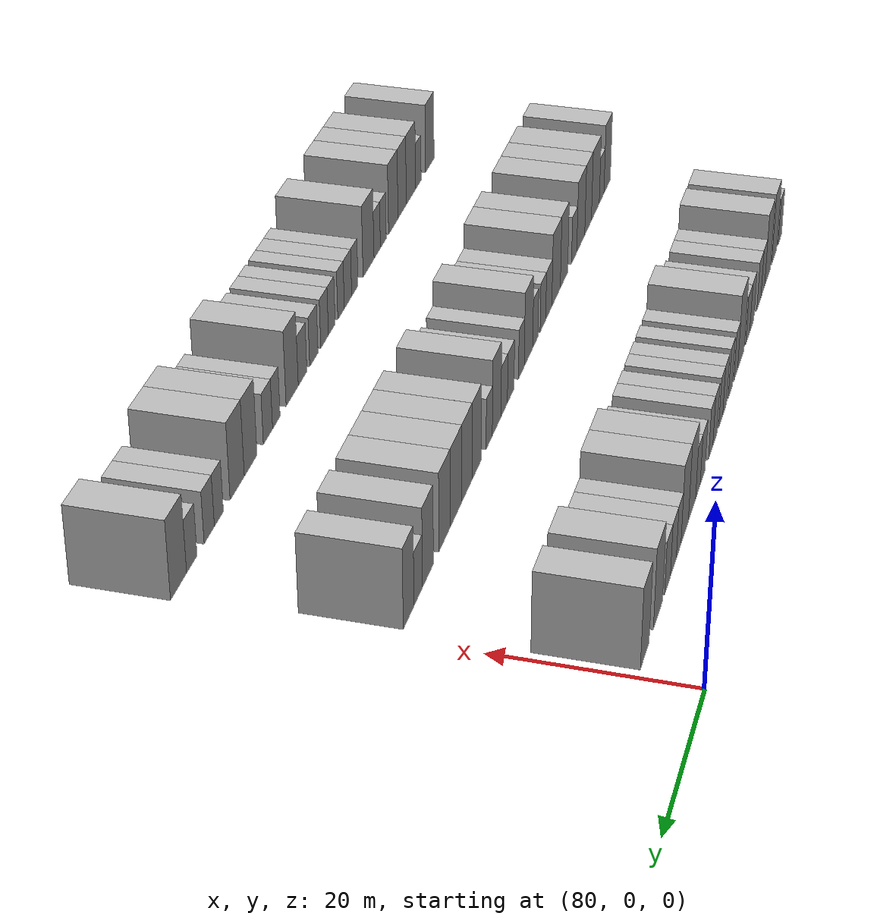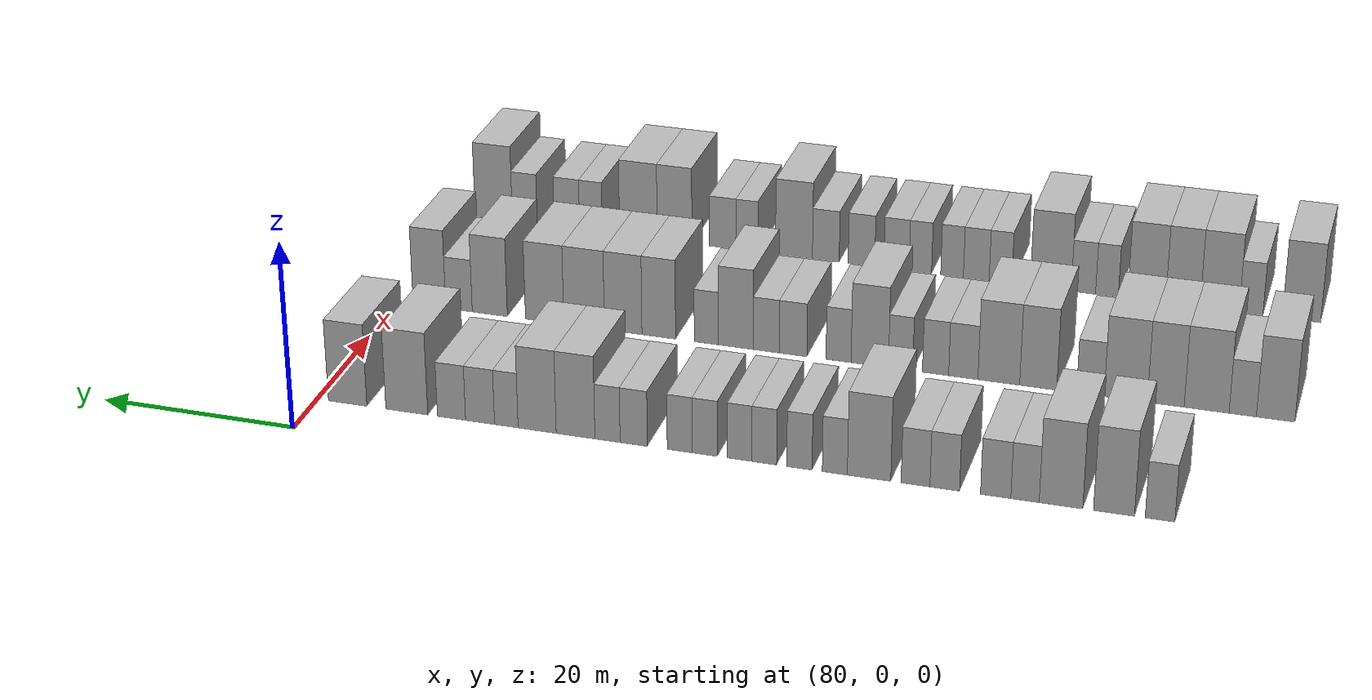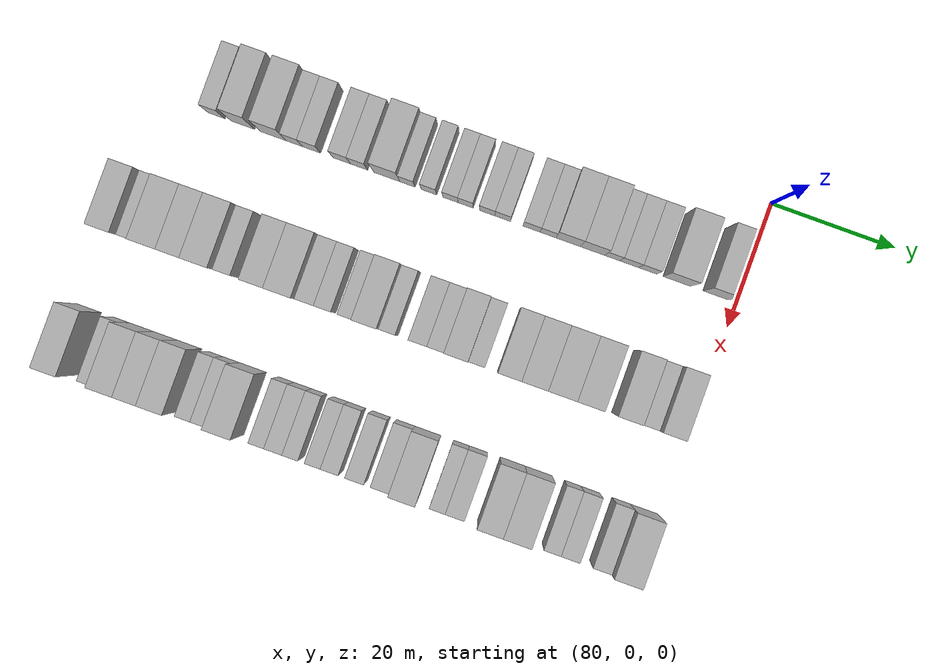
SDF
<sdf version="1.6">
 <world name="default">
  <model name="building_643">
   <static>1</static>
   <pose>91.0000 -83.6850 0 0.000000 0.000000 0.000000</pose>
   <link name="link">
    <pose>0 0 3.00 0 0 0</pose>
    <collision name="collision"><geometry><box><size>10.0000 2.7421 6.0000</size></box></geometry></collision>
    <visual name="visual">
     <cast_shadows>0</cast_shadows>
     <geometry><box><size>10.0000 2.7421 6.0000</size></box></geometry>
     <material>
      <script>
       <uri>model://HANNAS_wall/materials/scripts</uri>
       <uri>model://HANNAS_wall/materials/textures</uri>
       <name>vrc/HANNAS_wall</name>
      </script>
     </material>
    </visual>
   </link>
  </model>
  <model name="building_644">
   <static>1</static>
   <pose>91.0000 -79.4085 0 0.000000 0.000000 0.000000</pose>
   <link name="link">
    <pose>0 0 4.50 0 0 0</pose>
    <collision name="collision"><geometry><box><size>10.0000 3.8108 9.0000</size></box></geometry></collision>
    <visual name="visual">
     <cast_shadows>0</cast_shadows>
     <geometry><box><size>10.0000 3.8108 9.0000</size></box></geometry>
     <material>
      <script>
       <uri>model://HANNAS_wall/materials/scripts</uri>
       <uri>model://HANNAS_wall/materials/textures</uri>
       <name>vrc/HANNAS_wall</name>
      </script>
     </material>
    </visual>
   </link>
  </model>
  <model name="building_645">
   <static>1</static>
   <pose>91.0000 -74.4525 0 0.000000 0.000000 0.000000</pose>
   <link name="link">
    <pose>0 0 4.50 0 0 0</pose>
    <collision name="collision"><geometry><box><size>10.0000 4.1012 9.0000</size></box></geometry></collision>
    <visual name="visual">
     <cast_shadows>0</cast_shadows>
     <geometry><box><size>10.0000 4.1012 9.0000</size></box></geometry>
     <material>
      <script>
       <uri>model://HANNAS_wall/materials/scripts</uri>
       <uri>model://HANNAS_wall/materials/textures</uri>
       <name>vrc/HANNAS_wall</name>
      </script>
     </material>
    </visual>
   </link>
  </model>
  <model name="building_646">
   <static>1</static>
   <pose>91.0000 -71.0633 0 0.000000 0.000000 0.000000</pose>
   <link name="link">
    <pose>0 0 3.00 0 0 0</pose>
    <collision name="collision"><geometry><box><size>10.0000 2.6772 6.0000</size></box></geometry></collision>
    <visual name="visual">
     <cast_shadows>0</cast_shadows>
     <geometry><box><size>10.0000 2.6772 6.0000</size></box></geometry>
     <material>
      <script>
       <uri>model://HANNAS_wall/materials/scripts</uri>
       <uri>model://HANNAS_wall/materials/textures</uri>
       <name>vrc/HANNAS_wall</name>
      </script>
     </material>
    </visual>
   </link>
  </model>
  <model name="building_647">
   <static>1</static>
   <pose>91.0000 -68.2858 0 0.000000 0.000000 0.000000</pose>
   <link name="link">
    <pose>0 0 3.00 0 0 0</pose>
    <collision name="collision"><geometry><box><size>10.0000 2.8777 6.0000</size></box></geometry></collision>
    <visual name="visual">
     <cast_shadows>0</cast_shadows>
     <geometry><box><size>10.0000 2.8777 6.0000</size></box></geometry>
     <material>
      <script>
       <uri>model://HANNAS_wall/materials/scripts</uri>
       <uri>model://HANNAS_wall/materials/textures</uri>
       <name>vrc/HANNAS_wall</name>
      </script>
     </material>
    </visual>
   </link>
  </model>
  <model name="building_648">
   <static>1</static>
   <pose>91.0000 -63.4286 0 0.000000 0.000000 0.000000</pose>
   <link name="link">
    <pose>0 0 3.00 0 0 0</pose>
    <collision name="collision"><geometry><box><size>10.0000 2.8369 6.0000</size></box></geometry></collision>
    <visual name="visual">
     <cast_shadows>0</cast_shadows>
     <geometry><box><size>10.0000 2.8369 6.0000</size></box></geometry>
     <material>
      <script>
       <uri>model://HANNAS_wall/materials/scripts</uri>
       <uri>model://HANNAS_wall/materials/textures</uri>
       <name>vrc/HANNAS_wall</name>
      </script>
     </material>
    </visual>
   </link>
  </model>
  <model name="building_649">
   <static>1</static>
   <pose>91.0000 -60.6239 0 0.000000 0.000000 0.000000</pose>
   <link name="link">
    <pose>0 0 3.00 0 0 0</pose>
    <collision name="collision"><geometry><box><size>10.0000 2.7725 6.0000</size></box></geometry></collision>
    <visual name="visual">
     <cast_shadows>0</cast_shadows>
     <geometry><box><size>10.0000 2.7725 6.0000</size></box></geometry>
     <material>
      <script>
       <uri>model://HANNAS_wall/materials/scripts</uri>
       <uri>model://HANNAS_wall/materials/textures</uri>
       <name>vrc/HANNAS_wall</name>
      </script>
     </material>
    </visual>
   </link>
  </model>
  <model name="building_650">
   <static>1</static>
   <pose>91.0000 -56.1336 0 0.000000 0.000000 0.000000</pose>
   <link name="link">
    <pose>0 0 4.50 0 0 0</pose>
    <collision name="collision"><geometry><box><size>10.0000 4.2081 9.0000</size></box></geometry></collision>
    <visual name="visual">
     <cast_shadows>0</cast_shadows>
     <geometry><box><size>10.0000 4.2081 9.0000</size></box></geometry>
     <material>
      <script>
       <uri>model://HANNAS_wall/materials/scripts</uri>
       <uri>model://HANNAS_wall/materials/textures</uri>
       <name>vrc/HANNAS_wall</name>
      </script>
     </material>
    </visual>
   </link>
  </model>
  <model name="building_651">
   <static>1</static>
   <pose>91.0000 -52.8080 0 0.000000 0.000000 0.000000</pose>
   <link name="link">
    <pose>0 0 3.00 0 0 0</pose>
    <collision name="collision"><geometry><box><size>10.0000 2.4431 6.0000</size></box></geometry></collision>
    <visual name="visual">
     <cast_shadows>0</cast_shadows>
     <geometry><box><size>10.0000 2.4431 6.0000</size></box></geometry>
     <material>
      <script>
       <uri>model://HANNAS_wall/materials/scripts</uri>
       <uri>model://HANNAS_wall/materials/textures</uri>
       <name>vrc/HANNAS_wall</name>
      </script>
     </material>
    </visual>
   </link>
  </model>
  <model name="building_652">
   <static>1</static>
   <pose>91.0000 -49.3465 0 0.000000 0.000000 0.000000</pose>
   <link name="link">
    <pose>0 0 3.00 0 0 0</pose>
    <collision name="collision"><geometry><box><size>10.0000 2.4798 6.0000</size></box></geometry></collision>
    <visual name="visual">
     <cast_shadows>0</cast_shadows>
     <geometry><box><size>10.0000 2.4798 6.0000</size></box></geometry>
     <material>
      <script>
       <uri>model://HANNAS_wall/materials/scripts</uri>
       <uri>model://HANNAS_wall/materials/textures</uri>
       <name>vrc/HANNAS_wall</name>
      </script>
     </material>
    </visual>
   </link>
  </model>
  <model name="building_653">
   <static>1</static>
   <pose>91.0000 -45.8767 0 0.000000 0.000000 0.000000</pose>
   <link name="link">
    <pose>0 0 3.00 0 0 0</pose>
    <collision name="collision"><geometry><box><size>10.0000 2.4599 6.0000</size></box></geometry></collision>
    <visual name="visual">
     <cast_shadows>0</cast_shadows>
     <geometry><box><size>10.0000 2.4599 6.0000</size></box></geometry>
     <material>
      <script>
       <uri>model://HANNAS_wall/materials/scripts</uri>
       <uri>model://HANNAS_wall/materials/textures</uri>
       <name>vrc/HANNAS_wall</name>
      </script>
     </material>
    </visual>
   </link>
  </model>
  <model name="building_654">
   <static>1</static>
   <pose>91.0000 -43.4436 0 0.000000 0.000000 0.000000</pose>
   <link name="link">
    <pose>0 0 3.00 0 0 0</pose>
    <collision name="collision"><geometry><box><size>10.0000 2.4063 6.0000</size></box></geometry></collision>
    <visual name="visual">
     <cast_shadows>0</cast_shadows>
     <geometry><box><size>10.0000 2.4063 6.0000</size></box></geometry>
     <material>
      <script>
       <uri>model://HANNAS_wall/materials/scripts</uri>
       <uri>model://HANNAS_wall/materials/textures</uri>
       <name>vrc/HANNAS_wall</name>
      </script>
     </material>
    </visual>
   </link>
  </model>
  <model name="building_655">
   <static>1</static>
   <pose>91.0000 -39.9858 0 0.000000 0.000000 0.000000</pose>
   <link name="link">
    <pose>0 0 3.00 0 0 0</pose>
    <collision name="collision"><geometry><box><size>10.0000 2.5092 6.0000</size></box></geometry></collision>
    <visual name="visual">
     <cast_shadows>0</cast_shadows>
     <geometry><box><size>10.0000 2.5092 6.0000</size></box></geometry>
     <material>
      <script>
       <uri>model://HANNAS_wall/materials/scripts</uri>
       <uri>model://HANNAS_wall/materials/textures</uri>
       <name>vrc/HANNAS_wall</name>
      </script>
     </material>
    </visual>
   </link>
  </model>
  <model name="building_656">
   <static>1</static>
   <pose>91.0000 -37.4849 0 0.000000 0.000000 0.000000</pose>
   <link name="link">
    <pose>0 0 3.00 0 0 0</pose>
    <collision name="collision"><geometry><box><size>10.0000 2.4926 6.0000</size></box></geometry></collision>
    <visual name="visual">
     <cast_shadows>0</cast_shadows>
     <geometry><box><size>10.0000 2.4926 6.0000</size></box></geometry>
     <material>
      <script>
       <uri>model://HANNAS_wall/materials/scripts</uri>
       <uri>model://HANNAS_wall/materials/textures</uri>
       <name>vrc/HANNAS_wall</name>
      </script>
     </material>
    </visual>
   </link>
  </model>
  <model name="building_657">
   <static>1</static>
   <pose>91.0000 -32.8639 0 0.000000 0.000000 0.000000</pose>
   <link name="link">
    <pose>0 0 3.00 0 0 0</pose>
    <collision name="collision"><geometry><box><size>10.0000 2.7495 6.0000</size></box></geometry></collision>
    <visual name="visual">
     <cast_shadows>0</cast_shadows>
     <geometry><box><size>10.0000 2.7495 6.0000</size></box></geometry>
     <material>
      <script>
       <uri>model://HANNAS_wall/materials/scripts</uri>
       <uri>model://HANNAS_wall/materials/textures</uri>
       <name>vrc/HANNAS_wall</name>
      </script>
     </material>
    </visual>
   </link>
  </model>
  <model name="building_658">
   <static>1</static>
   <pose>91.0000 -30.2116 0 0.000000 0.000000 0.000000</pose>
   <link name="link">
    <pose>0 0 3.00 0 0 0</pose>
    <collision name="collision"><geometry><box><size>10.0000 2.5549 6.0000</size></box></geometry></collision>
    <visual name="visual">
     <cast_shadows>0</cast_shadows>
     <geometry><box><size>10.0000 2.5549 6.0000</size></box></geometry>
     <material>
      <script>
       <uri>model://HANNAS_wall/materials/scripts</uri>
       <uri>model://HANNAS_wall/materials/textures</uri>
       <name>vrc/HANNAS_wall</name>
      </script>
     </material>
    </visual>
   </link>
  </model>
  <model name="building_659">
   <static>1</static>
   <pose>91.0000 -26.9618 0 0.000000 0.000000 0.000000</pose>
   <link name="link">
    <pose>0 0 4.50 0 0 0</pose>
    <collision name="collision"><geometry><box><size>10.0000 3.9448 9.0000</size></box></geometry></collision>
    <visual name="visual">
     <cast_shadows>0</cast_shadows>
     <geometry><box><size>10.0000 3.9448 9.0000</size></box></geometry>
     <material>
      <script>
       <uri>model://HANNAS_wall/materials/scripts</uri>
       <uri>model://HANNAS_wall/materials/textures</uri>
       <name>vrc/HANNAS_wall</name>
      </script>
     </material>
    </visual>
   </link>
  </model>
  <model name="building_660">
   <static>1</static>
   <pose>91.0000 -23.0327 0 0.000000 0.000000 0.000000</pose>
   <link name="link">
    <pose>0 0 4.50 0 0 0</pose>
    <collision name="collision"><geometry><box><size>10.0000 3.9133 9.0000</size></box></geometry></collision>
    <visual name="visual">
     <cast_shadows>0</cast_shadows>
     <geometry><box><size>10.0000 3.9133 9.0000</size></box></geometry>
     <material>
      <script>
       <uri>model://HANNAS_wall/materials/scripts</uri>
       <uri>model://HANNAS_wall/materials/textures</uri>
       <name>vrc/HANNAS_wall</name>
      </script>
     </material>
    </visual>
   </link>
  </model>
  <model name="building_661">
   <static>1</static>
   <pose>91.0000 -19.8635 0 0.000000 0.000000 0.000000</pose>
   <link name="link">
    <pose>0 0 3.00 0 0 0</pose>
    <collision name="collision"><geometry><box><size>10.0000 2.4252 6.0000</size></box></geometry></collision>
    <visual name="visual">
     <cast_shadows>0</cast_shadows>
     <geometry><box><size>10.0000 2.4252 6.0000</size></box></geometry>
     <material>
      <script>
       <uri>model://HANNAS_wall/materials/scripts</uri>
       <uri>model://HANNAS_wall/materials/textures</uri>
       <name>vrc/HANNAS_wall</name>
      </script>
     </material>
    </visual>
   </link>
  </model>
  <model name="building_662">
   <static>1</static>
   <pose>91.0000 -17.1523 0 0.000000 0.000000 0.000000</pose>
   <link name="link">
    <pose>0 0 3.00 0 0 0</pose>
    <collision name="collision"><geometry><box><size>10.0000 2.9972 6.0000</size></box></geometry></collision>
    <visual name="visual">
     <cast_shadows>0</cast_shadows>
     <geometry><box><size>10.0000 2.9972 6.0000</size></box></geometry>
     <material>
      <script>
       <uri>model://HANNAS_wall/materials/scripts</uri>
       <uri>model://HANNAS_wall/materials/textures</uri>
       <name>vrc/HANNAS_wall</name>
      </script>
     </material>
    </visual>
   </link>
  </model>
  <model name="building_663">
   <static>1</static>
   <pose>91.0000 -14.1858 0 0.000000 0.000000 0.000000</pose>
   <link name="link">
    <pose>0 0 3.00 0 0 0</pose>
    <collision name="collision"><geometry><box><size>10.0000 2.9357 6.0000</size></box></geometry></collision>
    <visual name="visual">
     <cast_shadows>0</cast_shadows>
     <geometry><box><size>10.0000 2.9357 6.0000</size></box></geometry>
     <material>
      <script>
       <uri>model://HANNAS_wall/materials/scripts</uri>
       <uri>model://HANNAS_wall/materials/textures</uri>
       <name>vrc/HANNAS_wall</name>
      </script>
     </material>
    </visual>
   </link>
  </model>
  <model name="building_664">
   <static>1</static>
   <pose>91.0000 -9.5169 0 0.000000 0.000000 0.000000</pose>
   <link name="link">
    <pose>0 0 4.50 0 0 0</pose>
    <collision name="collision"><geometry><box><size>10.0000 4.4023 9.0000</size></box></geometry></collision>
    <visual name="visual">
     <cast_shadows>0</cast_shadows>
     <geometry><box><size>10.0000 4.4023 9.0000</size></box></geometry>
     <material>
      <script>
       <uri>model://HANNAS_wall/materials/scripts</uri>
       <uri>model://HANNAS_wall/materials/textures</uri>
       <name>vrc/HANNAS_wall</name>
      </script>
     </material>
    </visual>
   </link>
  </model>
  <model name="building_665">
   <static>1</static>
   <pose>91.0000 -3.2772 0 0.000000 0.000000 0.000000</pose>
   <link name="link">
    <pose>0 0 4.50 0 0 0</pose>
    <collision name="collision"><geometry><box><size>10.0000 4.0771 9.0000</size></box></geometry></collision>
    <visual name="visual">
     <cast_shadows>0</cast_shadows>
     <geometry><box><size>10.0000 4.0771 9.0000</size></box></geometry>
     <material>
      <script>
       <uri>model://HANNAS_wall/materials/scripts</uri>
       <uri>model://HANNAS_wall/materials/textures</uri>
       <name>vrc/HANNAS_wall</name>
      </script>
     </material>
    </visual>
   </link>
  </model>
  <model name="building_837">
   <static>1</static>
   <pose>113.0000 -91.6653 0 0.000000 0.000000 0.000000</pose>
   <link name="link">
    <pose>0 0 4.50 0 0 0</pose>
    <collision name="collision"><geometry><box><size>10.0000 3.7498 9.0000</size></box></geometry></collision>
    <visual name="visual">
     <cast_shadows>0</cast_shadows>
     <geometry><box><size>10.0000 3.7498 9.0000</size></box></geometry>
     <material>
      <script>
       <uri>model://HANNAS_wall/materials/scripts</uri>
       <uri>model://HANNAS_wall/materials/textures</uri>
       <name>vrc/HANNAS_wall</name>
      </script>
     </material>
    </visual>
   </link>
  </model>
  <model name="building_838">
   <static>1</static>
   <pose>113.0000 -88.4600 0 0.000000 0.000000 0.000000</pose>
   <link name="link">
    <pose>0 0 3.00 0 0 0</pose>
    <collision name="collision"><geometry><box><size>10.0000 2.6609 6.0000</size></box></geometry></collision>
    <visual name="visual">
     <cast_shadows>0</cast_shadows>
     <geometry><box><size>10.0000 2.6609 6.0000</size></box></geometry>
     <material>
      <script>
       <uri>model://HANNAS_wall/materials/scripts</uri>
       <uri>model://HANNAS_wall/materials/textures</uri>
       <name>vrc/HANNAS_wall</name>
      </script>
     </material>
    </visual>
   </link>
  </model>
  <model name="building_839">
   <static>1</static>
   <pose>113.0000 -84.9216 0 0.000000 0.000000 0.000000</pose>
   <link name="link">
    <pose>0 0 4.50 0 0 0</pose>
    <collision name="collision"><geometry><box><size>10.0000 4.4158 9.0000</size></box></geometry></collision>
    <visual name="visual">
     <cast_shadows>0</cast_shadows>
     <geometry><box><size>10.0000 4.4158 9.0000</size></box></geometry>
     <material>
      <script>
       <uri>model://HANNAS_wall/materials/scripts</uri>
       <uri>model://HANNAS_wall/materials/textures</uri>
       <name>vrc/HANNAS_wall</name>
      </script>
     </material>
    </visual>
   </link>
  </model>
  <model name="building_840">
   <static>1</static>
   <pose>113.0000 -80.8931 0 0.000000 0.000000 0.000000</pose>
   <link name="link">
    <pose>0 0 4.50 0 0 0</pose>
    <collision name="collision"><geometry><box><size>10.0000 3.6413 9.0000</size></box></geometry></collision>
    <visual name="visual">
     <cast_shadows>0</cast_shadows>
     <geometry><box><size>10.0000 3.6413 9.0000</size></box></geometry>
     <material>
      <script>
       <uri>model://HANNAS_wall/materials/scripts</uri>
       <uri>model://HANNAS_wall/materials/textures</uri>
       <name>vrc/HANNAS_wall</name>
      </script>
     </material>
    </visual>
   </link>
  </model>
  <model name="building_841">
   <static>1</static>
   <pose>113.0000 -76.9253 0 0.000000 0.000000 0.000000</pose>
   <link name="link">
    <pose>0 0 4.50 0 0 0</pose>
    <collision name="collision"><geometry><box><size>10.0000 4.2943 9.0000</size></box></geometry></collision>
    <visual name="visual">
     <cast_shadows>0</cast_shadows>
     <geometry><box><size>10.0000 4.2943 9.0000</size></box></geometry>
     <material>
      <script>
       <uri>model://HANNAS_wall/materials/scripts</uri>
       <uri>model://HANNAS_wall/materials/textures</uri>
       <name>vrc/HANNAS_wall</name>
      </script>
     </material>
    </visual>
   </link>
  </model>
  <model name="building_842">
   <static>1</static>
   <pose>113.0000 -73.4005 0 0.000000 0.000000 0.000000</pose>
   <link name="link">
    <pose>0 0 3.00 0 0 0</pose>
    <collision name="collision"><geometry><box><size>10.0000 2.7552 6.0000</size></box></geometry></collision>
    <visual name="visual">
     <cast_shadows>0</cast_shadows>
     <geometry><box><size>10.0000 2.7552 6.0000</size></box></geometry>
     <material>
      <script>
       <uri>model://HANNAS_wall/materials/scripts</uri>
       <uri>model://HANNAS_wall/materials/textures</uri>
       <name>vrc/HANNAS_wall</name>
      </script>
     </material>
    </visual>
   </link>
  </model>
  <model name="building_843">
   <static>1</static>
   <pose>113.0000 -68.1539 0 0.000000 0.000000 0.000000</pose>
   <link name="link">
    <pose>0 0 4.50 0 0 0</pose>
    <collision name="collision"><geometry><box><size>10.0000 3.7379 9.0000</size></box></geometry></collision>
    <visual name="visual">
     <cast_shadows>0</cast_shadows>
     <geometry><box><size>10.0000 3.7379 9.0000</size></box></geometry>
     <material>
      <script>
       <uri>model://HANNAS_wall/materials/scripts</uri>
       <uri>model://HANNAS_wall/materials/textures</uri>
       <name>vrc/HANNAS_wall</name>
      </script>
     </material>
    </visual>
   </link>
  </model>
  <model name="building_844">
   <static>1</static>
   <pose>113.0000 -64.1636 0 0.000000 0.000000 0.000000</pose>
   <link name="link">
    <pose>0 0 4.50 0 0 0</pose>
    <collision name="collision"><geometry><box><size>10.0000 4.2427 9.0000</size></box></geometry></collision>
    <visual name="visual">
     <cast_shadows>0</cast_shadows>
     <geometry><box><size>10.0000 4.2427 9.0000</size></box></geometry>
     <material>
      <script>
       <uri>model://HANNAS_wall/materials/scripts</uri>
       <uri>model://HANNAS_wall/materials/textures</uri>
       <name>vrc/HANNAS_wall</name>
      </script>
     </material>
    </visual>
   </link>
  </model>
  <model name="building_845">
   <static>1</static>
   <pose>113.0000 -60.5468 0 0.000000 0.000000 0.000000</pose>
   <link name="link">
    <pose>0 0 3.00 0 0 0</pose>
    <collision name="collision"><geometry><box><size>10.0000 2.9909 6.0000</size></box></geometry></collision>
    <visual name="visual">
     <cast_shadows>0</cast_shadows>
     <geometry><box><size>10.0000 2.9909 6.0000</size></box></geometry>
     <material>
      <script>
       <uri>model://HANNAS_wall/materials/scripts</uri>
       <uri>model://HANNAS_wall/materials/textures</uri>
       <name>vrc/HANNAS_wall</name>
      </script>
     </material>
    </visual>
   </link>
  </model>
  <model name="building_846">
   <static>1</static>
   <pose>113.0000 -57.7048 0 0.000000 0.000000 0.000000</pose>
   <link name="link">
    <pose>0 0 3.00 0 0 0</pose>
    <collision name="collision"><geometry><box><size>10.0000 2.6932 6.0000</size></box></geometry></collision>
    <visual name="visual">
     <cast_shadows>0</cast_shadows>
     <geometry><box><size>10.0000 2.6932 6.0000</size></box></geometry>
     <material>
      <script>
       <uri>model://HANNAS_wall/materials/scripts</uri>
       <uri>model://HANNAS_wall/materials/textures</uri>
       <name>vrc/HANNAS_wall</name>
      </script>
     </material>
    </visual>
   </link>
  </model>
  <model name="building_847">
   <static>1</static>
   <pose>113.0000 -54.1045 0 0.000000 0.000000 0.000000</pose>
   <link name="link">
    <pose>0 0 3.00 0 0 0</pose>
    <collision name="collision"><geometry><box><size>10.0000 2.5075 6.0000</size></box></geometry></collision>
    <visual name="visual">
     <cast_shadows>0</cast_shadows>
     <geometry><box><size>10.0000 2.5075 6.0000</size></box></geometry>
     <material>
      <script>
       <uri>model://HANNAS_wall/materials/scripts</uri>
       <uri>model://HANNAS_wall/materials/textures</uri>
       <name>vrc/HANNAS_wall</name>
      </script>
     </material>
    </visual>
   </link>
  </model>
  <model name="building_848">
   <static>1</static>
   <pose>113.0000 -50.9097 0 0.000000 0.000000 0.000000</pose>
   <link name="link">
    <pose>0 0 4.50 0 0 0</pose>
    <collision name="collision"><geometry><box><size>10.0000 3.8820 9.0000</size></box></geometry></collision>
    <visual name="visual">
     <cast_shadows>0</cast_shadows>
     <geometry><box><size>10.0000 3.8820 9.0000</size></box></geometry>
     <material>
      <script>
       <uri>model://HANNAS_wall/materials/scripts</uri>
       <uri>model://HANNAS_wall/materials/textures</uri>
       <name>vrc/HANNAS_wall</name>
      </script>
     </material>
    </visual>
   </link>
  </model>
  <model name="building_849">
   <static>1</static>
   <pose>113.0000 -47.6640 0 0.000000 0.000000 0.000000</pose>
   <link name="link">
    <pose>0 0 3.00 0 0 0</pose>
    <collision name="collision"><geometry><box><size>10.0000 2.6095 6.0000</size></box></geometry></collision>
    <visual name="visual">
     <cast_shadows>0</cast_shadows>
     <geometry><box><size>10.0000 2.6095 6.0000</size></box></geometry>
     <material>
      <script>
       <uri>model://HANNAS_wall/materials/scripts</uri>
       <uri>model://HANNAS_wall/materials/textures</uri>
       <name>vrc/HANNAS_wall</name>
      </script>
     </material>
    </visual>
   </link>
  </model>
  <model name="building_850">
   <static>1</static>
   <pose>113.0000 -42.9039 0 0.000000 0.000000 0.000000</pose>
   <link name="link">
    <pose>0 0 3.00 0 0 0</pose>
    <collision name="collision"><geometry><box><size>10.0000 2.9106 6.0000</size></box></geometry></collision>
    <visual name="visual">
     <cast_shadows>0</cast_shadows>
     <geometry><box><size>10.0000 2.9106 6.0000</size></box></geometry>
     <material>
      <script>
       <uri>model://HANNAS_wall/materials/scripts</uri>
       <uri>model://HANNAS_wall/materials/textures</uri>
       <name>vrc/HANNAS_wall</name>
      </script>
     </material>
    </visual>
   </link>
  </model>
  <model name="building_851">
   <static>1</static>
   <pose>113.0000 -40.0726 0 0.000000 0.000000 0.000000</pose>
   <link name="link">
    <pose>0 0 3.00 0 0 0</pose>
    <collision name="collision"><geometry><box><size>10.0000 2.7522 6.0000</size></box></geometry></collision>
    <visual name="visual">
     <cast_shadows>0</cast_shadows>
     <geometry><box><size>10.0000 2.7522 6.0000</size></box></geometry>
     <material>
      <script>
       <uri>model://HANNAS_wall/materials/scripts</uri>
       <uri>model://HANNAS_wall/materials/textures</uri>
       <name>vrc/HANNAS_wall</name>
      </script>
     </material>
    </visual>
   </link>
  </model>
  <model name="building_852">
   <static>1</static>
   <pose>113.0000 -36.8443 0 0.000000 0.000000 0.000000</pose>
   <link name="link">
    <pose>0 0 4.50 0 0 0</pose>
    <collision name="collision"><geometry><box><size>10.0000 3.7045 9.0000</size></box></geometry></collision>
    <visual name="visual">
     <cast_shadows>0</cast_shadows>
     <geometry><box><size>10.0000 3.7045 9.0000</size></box></geometry>
     <material>
      <script>
       <uri>model://HANNAS_wall/materials/scripts</uri>
       <uri>model://HANNAS_wall/materials/textures</uri>
       <name>vrc/HANNAS_wall</name>
      </script>
     </material>
    </visual>
   </link>
  </model>
  <model name="building_853">
   <static>1</static>
   <pose>113.0000 -33.7096 0 0.000000 0.000000 0.000000</pose>
   <link name="link">
    <pose>0 0 3.00 0 0 0</pose>
    <collision name="collision"><geometry><box><size>10.0000 2.5649 6.0000</size></box></geometry></collision>
    <visual name="visual">
     <cast_shadows>0</cast_shadows>
     <geometry><box><size>10.0000 2.5649 6.0000</size></box></geometry>
     <material>
      <script>
       <uri>model://HANNAS_wall/materials/scripts</uri>
       <uri>model://HANNAS_wall/materials/textures</uri>
       <name>vrc/HANNAS_wall</name>
      </script>
     </material>
    </visual>
   </link>
  </model>
  <model name="building_854">
   <static>1</static>
   <pose>113.0000 -28.6182 0 0.000000 0.000000 0.000000</pose>
   <link name="link">
    <pose>0 0 4.50 0 0 0</pose>
    <collision name="collision"><geometry><box><size>10.0000 3.6178 9.0000</size></box></geometry></collision>
    <visual name="visual">
     <cast_shadows>0</cast_shadows>
     <geometry><box><size>10.0000 3.6178 9.0000</size></box></geometry>
     <material>
      <script>
       <uri>model://HANNAS_wall/materials/scripts</uri>
       <uri>model://HANNAS_wall/materials/textures</uri>
       <name>vrc/HANNAS_wall</name>
      </script>
     </material>
    </visual>
   </link>
  </model>
  <model name="building_855">
   <static>1</static>
   <pose>113.0000 -24.7796 0 0.000000 0.000000 0.000000</pose>
   <link name="link">
    <pose>0 0 4.50 0 0 0</pose>
    <collision name="collision"><geometry><box><size>10.0000 4.0593 9.0000</size></box></geometry></collision>
    <visual name="visual">
     <cast_shadows>0</cast_shadows>
     <geometry><box><size>10.0000 4.0593 9.0000</size></box></geometry>
     <material>
      <script>
       <uri>model://HANNAS_wall/materials/scripts</uri>
       <uri>model://HANNAS_wall/materials/textures</uri>
       <name>vrc/HANNAS_wall</name>
      </script>
     </material>
    </visual>
   </link>
  </model>
  <model name="building_856">
   <static>1</static>
   <pose>113.0000 -20.5374 0 0.000000 0.000000 0.000000</pose>
   <link name="link">
    <pose>0 0 4.50 0 0 0</pose>
    <collision name="collision"><geometry><box><size>10.0000 4.4251 9.0000</size></box></geometry></collision>
    <visual name="visual">
     <cast_shadows>0</cast_shadows>
     <geometry><box><size>10.0000 4.4251 9.0000</size></box></geometry>
     <material>
      <script>
       <uri>model://HANNAS_wall/materials/scripts</uri>
       <uri>model://HANNAS_wall/materials/textures</uri>
       <name>vrc/HANNAS_wall</name>
      </script>
     </material>
    </visual>
   </link>
  </model>
  <model name="building_857">
   <static>1</static>
   <pose>113.0000 -16.2241 0 0.000000 0.000000 0.000000</pose>
   <link name="link">
    <pose>0 0 4.50 0 0 0</pose>
    <collision name="collision"><geometry><box><size>10.0000 4.2015 9.0000</size></box></geometry></collision>
    <visual name="visual">
     <cast_shadows>0</cast_shadows>
     <geometry><box><size>10.0000 4.2015 9.0000</size></box></geometry>
     <material>
      <script>
       <uri>model://HANNAS_wall/materials/scripts</uri>
       <uri>model://HANNAS_wall/materials/textures</uri>
       <name>vrc/HANNAS_wall</name>
      </script>
     </material>
    </visual>
   </link>
  </model>
  <model name="building_858">
   <static>1</static>
   <pose>113.0000 -10.1791 0 0.000000 0.000000 0.000000</pose>
   <link name="link">
    <pose>0 0 4.50 0 0 0</pose>
    <collision name="collision"><geometry><box><size>10.0000 3.8886 9.0000</size></box></geometry></collision>
    <visual name="visual">
     <cast_shadows>0</cast_shadows>
     <geometry><box><size>10.0000 3.8886 9.0000</size></box></geometry>
     <material>
      <script>
       <uri>model://HANNAS_wall/materials/scripts</uri>
       <uri>model://HANNAS_wall/materials/textures</uri>
       <name>vrc/HANNAS_wall</name>
      </script>
     </material>
    </visual>
   </link>
  </model>
  <model name="building_859">
   <static>1</static>
   <pose>113.0000 -6.7648 0 0.000000 0.000000 0.000000</pose>
   <link name="link">
    <pose>0 0 3.00 0 0 0</pose>
    <collision name="collision"><geometry><box><size>10.0000 2.9400 6.0000</size></box></geometry></collision>
    <visual name="visual">
     <cast_shadows>0</cast_shadows>
     <geometry><box><size>10.0000 2.9400 6.0000</size></box></geometry>
     <material>
      <script>
       <uri>model://HANNAS_wall/materials/scripts</uri>
       <uri>model://HANNAS_wall/materials/textures</uri>
       <name>vrc/HANNAS_wall</name>
      </script>
     </material>
    </visual>
   </link>
  </model>
  <model name="building_860">
   <static>1</static>
   <pose>113.0000 -3.4691 0 0.000000 0.000000 0.000000</pose>
   <link name="link">
    <pose>0 0 4.50 0 0 0</pose>
    <collision name="collision"><geometry><box><size>10.0000 3.6513 9.0000</size></box></geometry></collision>
    <visual name="visual">
     <cast_shadows>0</cast_shadows>
     <geometry><box><size>10.0000 3.6513 9.0000</size></box></geometry>
     <material>
      <script>
       <uri>model://HANNAS_wall/materials/scripts</uri>
       <uri>model://HANNAS_wall/materials/textures</uri>
       <name>vrc/HANNAS_wall</name>
      </script>
     </material>
    </visual>
   </link>
  </model>
  <model name="building_1025">
   <static>1</static>
   <pose>135.0000 -91.7281 0 0.000000 0.000000 0.000000</pose>
   <link name="link">
    <pose>0 0 4.50 0 0 0</pose>
    <collision name="collision"><geometry><box><size>10.0000 3.9538 9.0000</size></box></geometry></collision>
    <visual name="visual">
     <cast_shadows>0</cast_shadows>
     <geometry><box><size>10.0000 3.9538 9.0000</size></box></geometry>
     <material>
      <script>
       <uri>model://HANNAS_wall/materials/scripts</uri>
       <uri>model://HANNAS_wall/materials/textures</uri>
       <name>vrc/HANNAS_wall</name>
      </script>
     </material>
    </visual>
   </link>
  </model>
  <model name="building_1026">
   <static>1</static>
   <pose>135.0000 -86.5117 0 0.000000 0.000000 0.000000</pose>
   <link name="link">
    <pose>0 0 3.00 0 0 0</pose>
    <collision name="collision"><geometry><box><size>10.0000 2.4790 6.0000</size></box></geometry></collision>
    <visual name="visual">
     <cast_shadows>0</cast_shadows>
     <geometry><box><size>10.0000 2.4790 6.0000</size></box></geometry>
     <material>
      <script>
       <uri>model://HANNAS_wall/materials/scripts</uri>
       <uri>model://HANNAS_wall/materials/textures</uri>
       <name>vrc/HANNAS_wall</name>
      </script>
     </material>
    </visual>
   </link>
  </model>
  <model name="building_1027">
   <static>1</static>
   <pose>135.0000 -83.2308 0 0.000000 0.000000 0.000000</pose>
   <link name="link">
    <pose>0 0 4.50 0 0 0</pose>
    <collision name="collision"><geometry><box><size>10.0000 4.0829 9.0000</size></box></geometry></collision>
    <visual name="visual">
     <cast_shadows>0</cast_shadows>
     <geometry><box><size>10.0000 4.0829 9.0000</size></box></geometry>
     <material>
      <script>
       <uri>model://HANNAS_wall/materials/scripts</uri>
       <uri>model://HANNAS_wall/materials/textures</uri>
       <name>vrc/HANNAS_wall</name>
      </script>
     </material>
    </visual>
   </link>
  </model>
  <model name="building_1028">
   <static>1</static>
   <pose>135.0000 -79.3769 0 0.000000 0.000000 0.000000</pose>
   <link name="link">
    <pose>0 0 4.50 0 0 0</pose>
    <collision name="collision"><geometry><box><size>10.0000 3.6250 9.0000</size></box></geometry></collision>
    <visual name="visual">
     <cast_shadows>0</cast_shadows>
     <geometry><box><size>10.0000 3.6250 9.0000</size></box></geometry>
     <material>
      <script>
       <uri>model://HANNAS_wall/materials/scripts</uri>
       <uri>model://HANNAS_wall/materials/textures</uri>
       <name>vrc/HANNAS_wall</name>
      </script>
     </material>
    </visual>
   </link>
  </model>
  <model name="building_1029">
   <static>1</static>
   <pose>135.0000 -75.5633 0 0.000000 0.000000 0.000000</pose>
   <link name="link">
    <pose>0 0 4.50 0 0 0</pose>
    <collision name="collision"><geometry><box><size>10.0000 4.0022 9.0000</size></box></geometry></collision>
    <visual name="visual">
     <cast_shadows>0</cast_shadows>
     <geometry><box><size>10.0000 4.0022 9.0000</size></box></geometry>
     <material>
      <script>
       <uri>model://HANNAS_wall/materials/scripts</uri>
       <uri>model://HANNAS_wall/materials/textures</uri>
       <name>vrc/HANNAS_wall</name>
      </script>
     </material>
    </visual>
   </link>
  </model>
  <model name="building_1030">
   <static>1</static>
   <pose>135.0000 -71.3542 0 0.000000 0.000000 0.000000</pose>
   <link name="link">
    <pose>0 0 3.00 0 0 0</pose>
    <collision name="collision"><geometry><box><size>10.0000 2.4159 6.0000</size></box></geometry></collision>
    <visual name="visual">
     <cast_shadows>0</cast_shadows>
     <geometry><box><size>10.0000 2.4159 6.0000</size></box></geometry>
     <material>
      <script>
       <uri>model://HANNAS_wall/materials/scripts</uri>
       <uri>model://HANNAS_wall/materials/textures</uri>
       <name>vrc/HANNAS_wall</name>
      </script>
     </material>
    </visual>
   </link>
  </model>
  <model name="building_1031">
   <static>1</static>
   <pose>135.0000 -68.8468 0 0.000000 0.000000 0.000000</pose>
   <link name="link">
    <pose>0 0 3.00 0 0 0</pose>
    <collision name="collision"><geometry><box><size>10.0000 2.5988 6.0000</size></box></geometry></collision>
    <visual name="visual">
     <cast_shadows>0</cast_shadows>
     <geometry><box><size>10.0000 2.5988 6.0000</size></box></geometry>
     <material>
      <script>
       <uri>model://HANNAS_wall/materials/scripts</uri>
       <uri>model://HANNAS_wall/materials/textures</uri>
       <name>vrc/HANNAS_wall</name>
      </script>
     </material>
    </visual>
   </link>
  </model>
  <model name="building_1032">
   <static>1</static>
   <pose>135.0000 -65.3509 0 0.000000 0.000000 0.000000</pose>
   <link name="link">
    <pose>0 0 4.50 0 0 0</pose>
    <collision name="collision"><geometry><box><size>10.0000 4.3929 9.0000</size></box></geometry></collision>
    <visual name="visual">
     <cast_shadows>0</cast_shadows>
     <geometry><box><size>10.0000 4.3929 9.0000</size></box></geometry>
     <material>
      <script>
       <uri>model://HANNAS_wall/materials/scripts</uri>
       <uri>model://HANNAS_wall/materials/textures</uri>
       <name>vrc/HANNAS_wall</name>
      </script>
     </material>
    </visual>
   </link>
  </model>
  <model name="building_1033">
   <static>1</static>
   <pose>135.0000 -59.9283 0 0.000000 0.000000 0.000000</pose>
   <link name="link">
    <pose>0 0 3.00 0 0 0</pose>
    <collision name="collision"><geometry><box><size>10.0000 2.4524 6.0000</size></box></geometry></collision>
    <visual name="visual">
     <cast_shadows>0</cast_shadows>
     <geometry><box><size>10.0000 2.4524 6.0000</size></box></geometry>
     <material>
      <script>
       <uri>model://HANNAS_wall/materials/scripts</uri>
       <uri>model://HANNAS_wall/materials/textures</uri>
       <name>vrc/HANNAS_wall</name>
      </script>
     </material>
    </visual>
   </link>
  </model>
  <model name="building_1034">
   <static>1</static>
   <pose>135.0000 -57.3007 0 0.000000 0.000000 0.000000</pose>
   <link name="link">
    <pose>0 0 3.00 0 0 0</pose>
    <collision name="collision"><geometry><box><size>10.0000 2.8028 6.0000</size></box></geometry></collision>
    <visual name="visual">
     <cast_shadows>0</cast_shadows>
     <geometry><box><size>10.0000 2.8028 6.0000</size></box></geometry>
     <material>
      <script>
       <uri>model://HANNAS_wall/materials/scripts</uri>
       <uri>model://HANNAS_wall/materials/textures</uri>
       <name>vrc/HANNAS_wall</name>
      </script>
     </material>
    </visual>
   </link>
  </model>
  <model name="building_1035">
   <static>1</static>
   <pose>135.0000 -54.6629 0 0.000000 0.000000 0.000000</pose>
   <link name="link">
    <pose>0 0 3.00 0 0 0</pose>
    <collision name="collision"><geometry><box><size>10.0000 2.4728 6.0000</size></box></geometry></collision>
    <visual name="visual">
     <cast_shadows>0</cast_shadows>
     <geometry><box><size>10.0000 2.4728 6.0000</size></box></geometry>
     <material>
      <script>
       <uri>model://HANNAS_wall/materials/scripts</uri>
       <uri>model://HANNAS_wall/materials/textures</uri>
       <name>vrc/HANNAS_wall</name>
      </script>
     </material>
    </visual>
   </link>
  </model>
  <model name="building_1036">
   <static>1</static>
   <pose>135.0000 -51.1925 0 0.000000 0.000000 0.000000</pose>
   <link name="link">
    <pose>0 0 3.00 0 0 0</pose>
    <collision name="collision"><geometry><box><size>10.0000 2.4680 6.0000</size></box></geometry></collision>
    <visual name="visual">
     <cast_shadows>0</cast_shadows>
     <geometry><box><size>10.0000 2.4680 6.0000</size></box></geometry>
     <material>
      <script>
       <uri>model://HANNAS_wall/materials/scripts</uri>
       <uri>model://HANNAS_wall/materials/textures</uri>
       <name>vrc/HANNAS_wall</name>
      </script>
     </material>
    </visual>
   </link>
  </model>
  <model name="building_1037">
   <static>1</static>
   <pose>135.0000 -48.5655 0 0.000000 0.000000 0.000000</pose>
   <link name="link">
    <pose>0 0 3.00 0 0 0</pose>
    <collision name="collision"><geometry><box><size>10.0000 2.7860 6.0000</size></box></geometry></collision>
    <visual name="visual">
     <cast_shadows>0</cast_shadows>
     <geometry><box><size>10.0000 2.7860 6.0000</size></box></geometry>
     <material>
      <script>
       <uri>model://HANNAS_wall/materials/scripts</uri>
       <uri>model://HANNAS_wall/materials/textures</uri>
       <name>vrc/HANNAS_wall</name>
      </script>
     </material>
    </visual>
   </link>
  </model>
  <model name="building_1038">
   <static>1</static>
   <pose>135.0000 -44.6996 0 0.000000 0.000000 0.000000</pose>
   <link name="link">
    <pose>0 0 3.00 0 0 0</pose>
    <collision name="collision"><geometry><box><size>10.0000 2.9458 6.0000</size></box></geometry></collision>
    <visual name="visual">
     <cast_shadows>0</cast_shadows>
     <geometry><box><size>10.0000 2.9458 6.0000</size></box></geometry>
     <material>
      <script>
       <uri>model://HANNAS_wall/materials/scripts</uri>
       <uri>model://HANNAS_wall/materials/textures</uri>
       <name>vrc/HANNAS_wall</name>
      </script>
     </material>
    </visual>
   </link>
  </model>
  <model name="building_1039">
   <static>1</static>
   <pose>135.0000 -40.7348 0 0.000000 0.000000 0.000000</pose>
   <link name="link">
    <pose>0 0 3.00 0 0 0</pose>
    <collision name="collision"><geometry><box><size>10.0000 2.9838 6.0000</size></box></geometry></collision>
    <visual name="visual">
     <cast_shadows>0</cast_shadows>
     <geometry><box><size>10.0000 2.9838 6.0000</size></box></geometry>
     <material>
      <script>
       <uri>model://HANNAS_wall/materials/scripts</uri>
       <uri>model://HANNAS_wall/materials/textures</uri>
       <name>vrc/HANNAS_wall</name>
      </script>
     </material>
    </visual>
   </link>
  </model>
  <model name="building_1040">
   <static>1</static>
   <pose>135.0000 -37.1749 0 0.000000 0.000000 0.000000</pose>
   <link name="link">
    <pose>0 0 4.50 0 0 0</pose>
    <collision name="collision"><geometry><box><size>10.0000 4.1360 9.0000</size></box></geometry></collision>
    <visual name="visual">
     <cast_shadows>0</cast_shadows>
     <geometry><box><size>10.0000 4.1360 9.0000</size></box></geometry>
     <material>
      <script>
       <uri>model://HANNAS_wall/materials/scripts</uri>
       <uri>model://HANNAS_wall/materials/textures</uri>
       <name>vrc/HANNAS_wall</name>
      </script>
     </material>
    </visual>
   </link>
  </model>
  <model name="building_1041">
   <static>1</static>
   <pose>135.0000 -31.8679 0 0.000000 0.000000 0.000000</pose>
   <link name="link">
    <pose>0 0 3.00 0 0 0</pose>
    <collision name="collision"><geometry><box><size>10.0000 2.4779 6.0000</size></box></geometry></collision>
    <visual name="visual">
     <cast_shadows>0</cast_shadows>
     <geometry><box><size>10.0000 2.4779 6.0000</size></box></geometry>
     <material>
      <script>
       <uri>model://HANNAS_wall/materials/scripts</uri>
       <uri>model://HANNAS_wall/materials/textures</uri>
       <name>vrc/HANNAS_wall</name>
      </script>
     </material>
    </visual>
   </link>
  </model>
  <model name="building_1042">
   <static>1</static>
   <pose>135.0000 -29.1378 0 0.000000 0.000000 0.000000</pose>
   <link name="link">
    <pose>0 0 3.00 0 0 0</pose>
    <collision name="collision"><geometry><box><size>10.0000 2.9824 6.0000</size></box></geometry></collision>
    <visual name="visual">
     <cast_shadows>0</cast_shadows>
     <geometry><box><size>10.0000 2.9824 6.0000</size></box></geometry>
     <material>
      <script>
       <uri>model://HANNAS_wall/materials/scripts</uri>
       <uri>model://HANNAS_wall/materials/textures</uri>
       <name>vrc/HANNAS_wall</name>
      </script>
     </material>
    </visual>
   </link>
  </model>
  <model name="building_1043">
   <static>1</static>
   <pose>135.0000 -23.6605 0 0.000000 0.000000 0.000000</pose>
   <link name="link">
    <pose>0 0 4.50 0 0 0</pose>
    <collision name="collision"><geometry><box><size>10.0000 3.9722 9.0000</size></box></geometry></collision>
    <visual name="visual">
     <cast_shadows>0</cast_shadows>
     <geometry><box><size>10.0000 3.9722 9.0000</size></box></geometry>
     <material>
      <script>
       <uri>model://HANNAS_wall/materials/scripts</uri>
       <uri>model://HANNAS_wall/materials/textures</uri>
       <name>vrc/HANNAS_wall</name>
      </script>
     </material>
    </visual>
   </link>
  </model>
  <model name="building_1044">
   <static>1</static>
   <pose>135.0000 -19.5134 0 0.000000 0.000000 0.000000</pose>
   <link name="link">
    <pose>0 0 4.50 0 0 0</pose>
    <collision name="collision"><geometry><box><size>10.0000 4.3220 9.0000</size></box></geometry></collision>
    <visual name="visual">
     <cast_shadows>0</cast_shadows>
     <geometry><box><size>10.0000 4.3220 9.0000</size></box></geometry>
     <material>
      <script>
       <uri>model://HANNAS_wall/materials/scripts</uri>
       <uri>model://HANNAS_wall/materials/textures</uri>
       <name>vrc/HANNAS_wall</name>
      </script>
     </material>
    </visual>
   </link>
  </model>
  <model name="building_1045">
   <static>1</static>
   <pose>135.0000 -14.0341 0 0.000000 0.000000 0.000000</pose>
   <link name="link">
    <pose>0 0 3.00 0 0 0</pose>
    <collision name="collision"><geometry><box><size>10.0000 2.6366 6.0000</size></box></geometry></collision>
    <visual name="visual">
     <cast_shadows>0</cast_shadows>
     <geometry><box><size>10.0000 2.6366 6.0000</size></box></geometry>
     <material>
      <script>
       <uri>model://HANNAS_wall/materials/scripts</uri>
       <uri>model://HANNAS_wall/materials/textures</uri>
       <name>vrc/HANNAS_wall</name>
      </script>
     </material>
    </visual>
   </link>
  </model>
  <model name="building_1046">
   <static>1</static>
   <pose>135.0000 -11.2401 0 0.000000 0.000000 0.000000</pose>
   <link name="link">
    <pose>0 0 3.00 0 0 0</pose>
    <collision name="collision"><geometry><box><size>10.0000 2.9513 6.0000</size></box></geometry></collision>
    <visual name="visual">
     <cast_shadows>0</cast_shadows>
     <geometry><box><size>10.0000 2.9513 6.0000</size></box></geometry>
     <material>
      <script>
       <uri>model://HANNAS_wall/materials/scripts</uri>
       <uri>model://HANNAS_wall/materials/textures</uri>
       <name>vrc/HANNAS_wall</name>
      </script>
     </material>
    </visual>
   </link>
  </model>
  <model name="building_1047">
   <static>1</static>
   <pose>135.0000 -6.3101 0 0.000000 0.000000 0.000000</pose>
   <link name="link">
    <pose>0 0 3.00 0 0 0</pose>
    <collision name="collision"><geometry><box><size>10.0000 2.9087 6.0000</size></box></geometry></collision>
    <visual name="visual">
     <cast_shadows>0</cast_shadows>
     <geometry><box><size>10.0000 2.9087 6.0000</size></box></geometry>
     <material>
      <script>
       <uri>model://HANNAS_wall/materials/scripts</uri>
       <uri>model://HANNAS_wall/materials/textures</uri>
       <name>vrc/HANNAS_wall</name>
      </script>
     </material>
    </visual>
   </link>
  </model>
  <model name="building_1048">
   <static>1</static>
   <pose>135.0000 -2.6662 0 0.000000 0.000000 0.000000</pose>
   <link name="link">
    <pose>0 0 4.50 0 0 0</pose>
    <collision name="collision"><geometry><box><size>10.0000 4.3790 9.0000</size></box></geometry></collision>
    <visual name="visual">
     <cast_shadows>0</cast_shadows>
     <geometry><box><size>10.0000 4.3790 9.0000</size></box></geometry>
     <material>
      <script>
       <uri>model://HANNAS_wall/materials/scripts</uri>
       <uri>model://HANNAS_wall/materials/textures</uri>
       <name>vrc/HANNAS_wall</name>
      </script>
     </material>
    </visual>
   </link>
  </model>
 </world>
</sdf>
